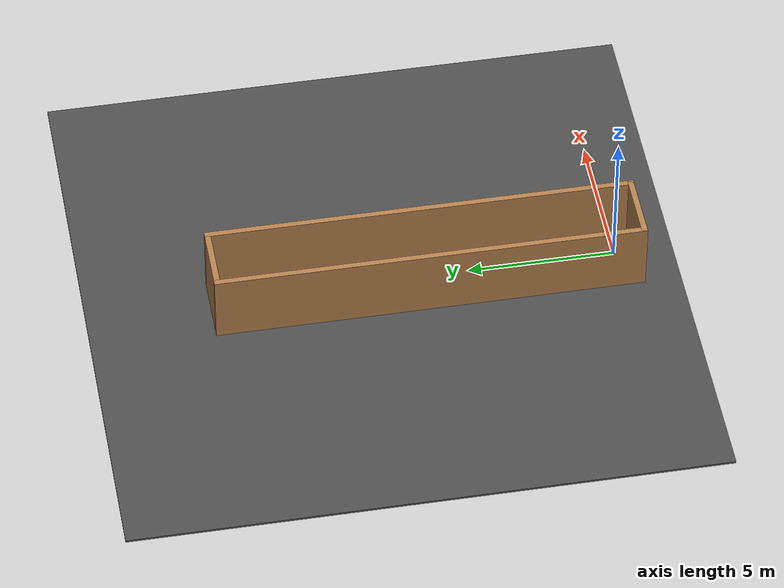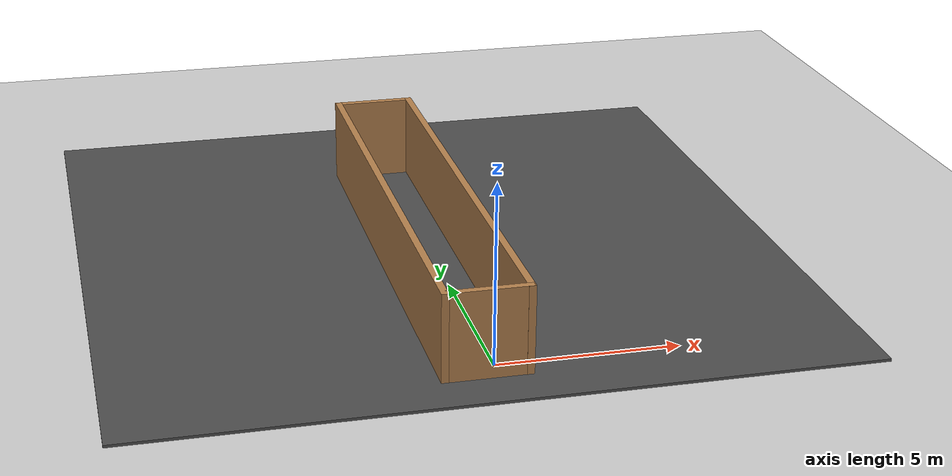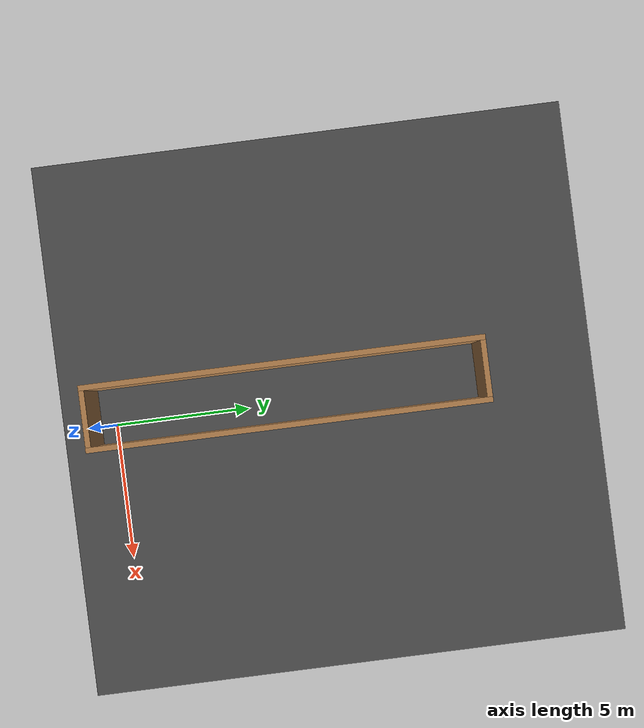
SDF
<?xml version="1.0"?>
<sdf version='1.4'>
  <world name='default'>
    <light name='sun' type='directional'>
      <cast_shadows>1</cast_shadows>
      <pose>0 0 10 0 -0 0</pose>
      <diffuse>0.8 0.8 0.8 1</diffuse>
      <specular>0.2 0.2 0.2 1</specular>
      <attenuation>
        <range>1000</range>
        <constant>0.9</constant>
        <linear>0.01</linear>
        <quadratic>0.001</quadratic>
      </attenuation>
      <direction>-0.5 0.1 -0.9</direction>
    </light>
    <model name='ground_plane'>
      <static>1</static>
      <link name='link'>
        <collision name='collision'>
          <geometry>
            <plane>
              <normal>0 0 1</normal>
              <size>100 100</size>
            </plane>
          </geometry>
          <surface>
            <friction>
              <ode>
                <mu>100</mu>
                <mu2>50</mu2>
              </ode>
            </friction>
            <bounce/>
            <contact>
              <ode/>
            </contact>
          </surface>
          <max_contacts>10</max_contacts>
        </collision>
        <visual name='visual'>
          <cast_shadows>0</cast_shadows>
          <geometry>
            <plane>
              <normal>0 0 1</normal>
              <size>100 100</size>
            </plane>
          </geometry>
          <material>
            <script>
              <uri>file://media/materials/scripts/gazebo.material</uri>
              <name>Gazebo/Grey</name>
            </script>
          </material>
        </visual>
        <velocity_decay>
          <linear>0</linear>
          <angular>0</angular>
        </velocity_decay>
        <self_collide>0</self_collide>
        <kinematic>0</kinematic>
        <gravity>1</gravity>
      </link>
    </model>
    <physics type='ode'>
      <max_step_size>0.001</max_step_size>
      <real_time_factor>1</real_time_factor>
      <real_time_update_rate>1000</real_time_update_rate>
      <gravity>0 0 -9.8</gravity>
    </physics>
    <scene>
      <ambient>0.4 0.4 0.4 1</ambient>
      <background>0.7 0.7 0.7 1</background>
      <shadows>1</shadows>
    </scene>
    <spherical_coordinates>
      <surface_model>EARTH_WGS84</surface_model>
      <latitude_deg>0</latitude_deg>
      <longitude_deg>0</longitude_deg>
      <elevation>0</elevation>
      <heading_deg>0</heading_deg>
    </spherical_coordinates>
    <model name='simple_long_corridor'>
      <link name='Wall_0'>
        <collision name='Wall_0_Collision'>
          <geometry>
            <box>
              <size>14.5665 0.2 2.5</size>
            </box>
          </geometry>
          <pose>0 0 1.25 0 -0 0</pose>
          <max_contacts>10</max_contacts>
          <surface>
            <bounce/>
            <friction>
              <ode/>
            </friction>
            <contact>
              <ode/>
            </contact>
          </surface>
        </collision>
        <visual name='Wall_0_Visual'>
          <pose>0 0 1.25 0 -0 0</pose>
          <geometry>
            <box>
              <size>14.5665 0.2 2.5</size>
            </box>
          </geometry>
          <material>
            <script>
              <uri>file://media/materials/scripts/gazebo.material</uri>
              <name>Gazebo/WoodFloor</name>
            </script>
          </material>
        </visual>
        <velocity_decay>
          <linear>0</linear>
          <angular>0</angular>
        </velocity_decay>
        <pose>-3.47 1.52109 0 0 -0 1.5708</pose>
        <self_collide>0</self_collide>
        <kinematic>0</kinematic>
        <gravity>1</gravity>
      </link>
      <link name='Wall_2'>
        <collision name='Wall_2_Collision'>
          <geometry>
            <box>
              <size>14.5683 0.2 2.5</size>
            </box>
          </geometry>
          <pose>0 0 1.25 0 -0 0</pose>
          <max_contacts>10</max_contacts>
          <surface>
            <bounce/>
            <friction>
              <ode/>
            </friction>
            <contact>
              <ode/>
            </contact>
          </surface>
        </collision>
        <visual name='Wall_2_Visual'>
          <pose>0 0 1.25 0 -0 0</pose>
          <geometry>
            <box>
              <size>14.5683 0.2 2.5</size>
            </box>
          </geometry>
          <material>
            <script>
              <uri>file://media/materials/scripts/gazebo.material</uri>
              <name>Gazebo/WoodFloor</name>
            </script>
          </material>
        </visual>
        <velocity_decay>
          <linear>0</linear>
          <angular>0</angular>
        </velocity_decay>
        <pose>-1.2412 1.51792 0 0 -0 1.5708</pose>
        <self_collide>0</self_collide>
        <kinematic>0</kinematic>
        <gravity>1</gravity>
      </link>
      <link name='Wall_4'>
        <collision name='Wall_4_Collision'>
          <geometry>
            <box>
              <size>2.38122 0.2 2.5</size>
            </box>
          </geometry>
          <pose>0 0 1.25 0 -0 0</pose>
          <max_contacts>10</max_contacts>
          <surface>
            <bounce/>
            <friction>
              <ode/>
            </friction>
            <contact>
              <ode/>
            </contact>
          </surface>
        </collision>
        <visual name='Wall_4_Visual'>
          <pose>0 0 1.25 0 -0 0</pose>
          <geometry>
            <box>
              <size>2.38122 0.2 2.5</size>
            </box>
          </geometry>
          <material>
            <script>
              <uri>file://media/materials/scripts/gazebo.material</uri>
              <name>Gazebo/WoodFloor</name>
            </script>
          </material>
        </visual>
        <velocity_decay>
          <linear>0</linear>
          <angular>0</angular>
        </velocity_decay>
        <pose>-2.3584 -5.66205 0 0 -0 0</pose>
        <self_collide>0</self_collide>
        <kinematic>0</kinematic>
        <gravity>1</gravity>
      </link>
      <link name='Wall_6'>
        <collision name='Wall_6_Collision'>
          <geometry>
            <box>
              <size>2.35462 0.2 2.5</size>
            </box>
          </geometry>
          <pose>0 0 1.25 0 -0 0</pose>
          <max_contacts>10</max_contacts>
          <surface>
            <bounce/>
            <friction>
              <ode/>
            </friction>
            <contact>
              <ode/>
            </contact>
          </surface>
        </collision>
        <visual name='Wall_6_Visual'>
          <pose>0 0 1.25 0 -0 0</pose>
          <geometry>
            <box>
              <size>2.35462 0.2 2.5</size>
            </box>
          </geometry>
          <material>
            <script>
              <uri>file://media/materials/scripts/gazebo.material</uri>
              <name>Gazebo/WoodFloor</name>
            </script>
          </material>
        </visual>
        <velocity_decay>
          <linear>0</linear>
          <angular>0</angular>
        </velocity_decay>
        <pose>-2.3717 8.70205 0 0 -0 0</pose>
        <self_collide>0</self_collide>
        <kinematic>0</kinematic>
        <gravity>1</gravity>
      </link>
      <static>1</static>
      <pose>2 5 0 0 -0 0</pose>
    </model>
    <model name='asphalt_plane'>
      <static>1</static>
      <pose>0 8 0 0 -0 3.14159</pose>
      <link name='link'>
        <collision name='collision'>
          <geometry>
            <box>
              <size>20 20 0.1</size>
            </box>
          </geometry>
          <max_contacts>10</max_contacts>
          <surface>
            <bounce/>
            <friction>
              <ode/>
            </friction>
            <contact>
              <ode/>
            </contact>
          </surface>
        </collision>
        <visual name='visual'>
          <cast_shadows>0</cast_shadows>
          <geometry>
            <box>
              <size>20 20 0.1</size>
            </box>
          </geometry>
          <material>
            <script>
              <uri>model://asphalt_plane/materials/scripts</uri>
              <uri>model://asphalt_plane/materials/textures</uri>
              <name>vrc/asphalt</name>
            </script>
          </material>
        </visual>
        <velocity_decay>
          <linear>0</linear>
          <angular>0</angular>
        </velocity_decay>
        <self_collide>0</self_collide>
        <kinematic>0</kinematic>
        <gravity>1</gravity>
      </link>
    </model>
    <gui fullscreen='0'>
      <camera name='user_camera'>
        <pose>-4.10065 2.47922 25.63 -1e-06 1.5418 -1.332</pose>
        <view_controller>orbit</view_controller>
      </camera>
    </gui>
  </world>
</sdf>
